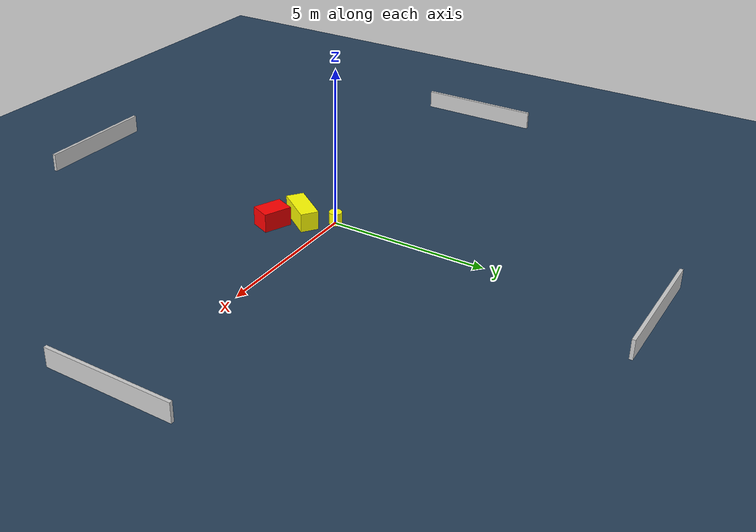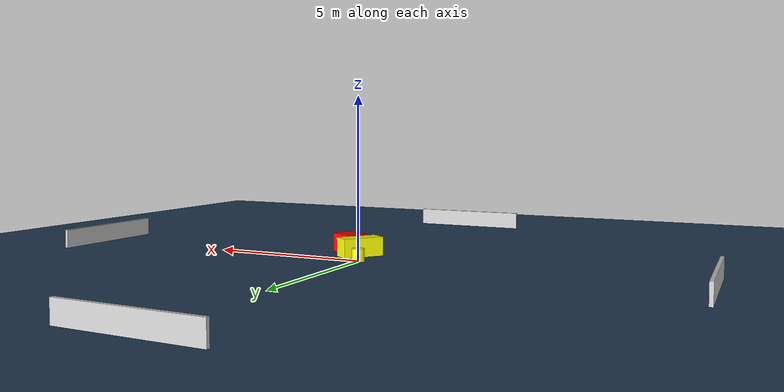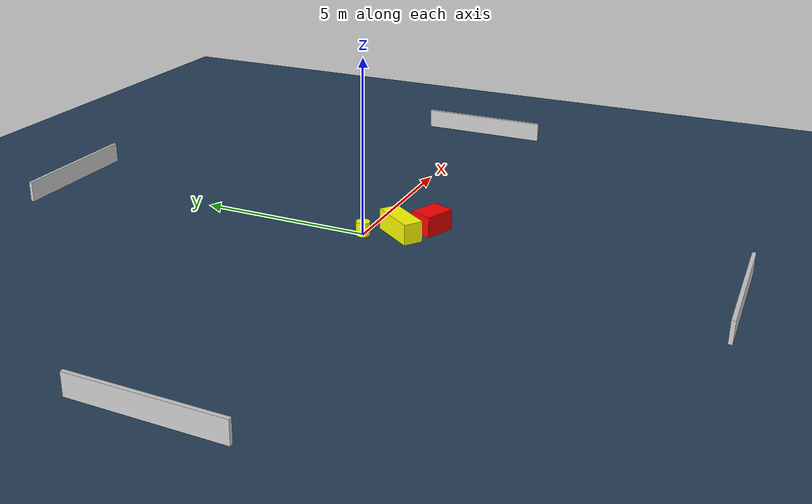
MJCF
<?xml version="1.0" ?>
<mujoco model="generated_environment">
  <option timestep="0.01" integrator="RK4" cone="elliptic"/>
  <default>
    <geom density="1"/>
  </default>
  <asset>
    <texture builtin="gradient" height="3072" name="skybox" rgb1="0.3 0.5 0.7" rgb2="0 0 0" type="skybox" width="512"/>
    <texture builtin="checker" height="300" name="groundplane" rgb1="0.2 0.3 0.4" rgb2="0.1 0.2 0.3" type="2d" width="300"/>
    <material name="groundplane" reflectance="0.2" texrepeat="5 5" texture="groundplane"/>
  </asset>
  <worldbody>
    <light dir="0 0 -1" directional="true" pos="0 0 1.5"/>
    <geom condim="3" friction="0.5 0.005 0.001" material="groundplane" name="floor" pos="0 0 0" size="0 0 0.05" type="plane"/>
    <body name="walls">
      <geom name="wall_1" condim="4" pos="-10.0 0.0 0.3" rgba="0.800000011920929 0.800000011920929 0.800000011920929 1.0" size="0.05 2.0 0.3" type="box"/>
      <geom name="wall_2" condim="4" pos="10.0 0.0 0.3" rgba="0.800000011920929 0.800000011920929 0.800000011920929 1.0" size="0.05 2.0 0.3" type="box"/>
      <geom name="wall_3" condim="4" pos="0.0 -10.0 0.3" rgba="0.800000011920929 0.800000011920929 0.800000011920929 1.0" size="2.0 0.05 0.3" type="box"/>
      <geom name="wall_4" condim="4" pos="0.0 10.0 0.3" rgba="0.800000011920929 0.800000011920929 0.800000011920929 1.0" size="2.0 0.05 0.3" type="box"/>
    </body>
    <body name="robot">
      <joint name="joint_x" type="slide" pos="0 0 0" axis="1 0 0"/>
      <joint name="joint_y" type="slide" pos="0 0 0" axis="0 1 0"/>
      <geom name="robot" type="cylinder" pos="0.0 0.0 0.2" size="0.2 0.2 0.0" mass="5.0" friction="1.0 0.005 0.0001" condim="4" rgba="1.0 1.0 0.0 1.0"/>
    </body>
    <body name="obstacle_1_movable">
      <geom name="obstacle_1_movable" condim="4" pos="0.4226469640269371 -0.9477166218866152 0.3" euler="0 0 143.8908494140094" friction="0.0 0.005 0.001" rgba="1.0 1.0 0.0 1.0" size="0.2831067446454973 0.6725103155889376 0.3" type="box" mass="0.1"/>
      <joint type="free"/>
    </body>
    <body name="obstacle_2_static">
      <geom name="obstacle_2_static" condim="4" pos="1.09869900825247 -1.5900602140472127 0.3" euler="0 0 247.07731511458326" friction="0.0 0.005 0.001" rgba="1.0 0.0 0.0 1.0" size="0.3313364707432399 0.45530520333393903 0.3" type="box"/>
    </body>
  </worldbody>
  <actuator>
    <motor name="actuator_x" joint="joint_x" gear="1" ctrlrange="-1 1"/>
    <motor name="actuator_y" joint="joint_y" gear="1" ctrlrange="-1 1"/>
  </actuator>
</mujoco>
